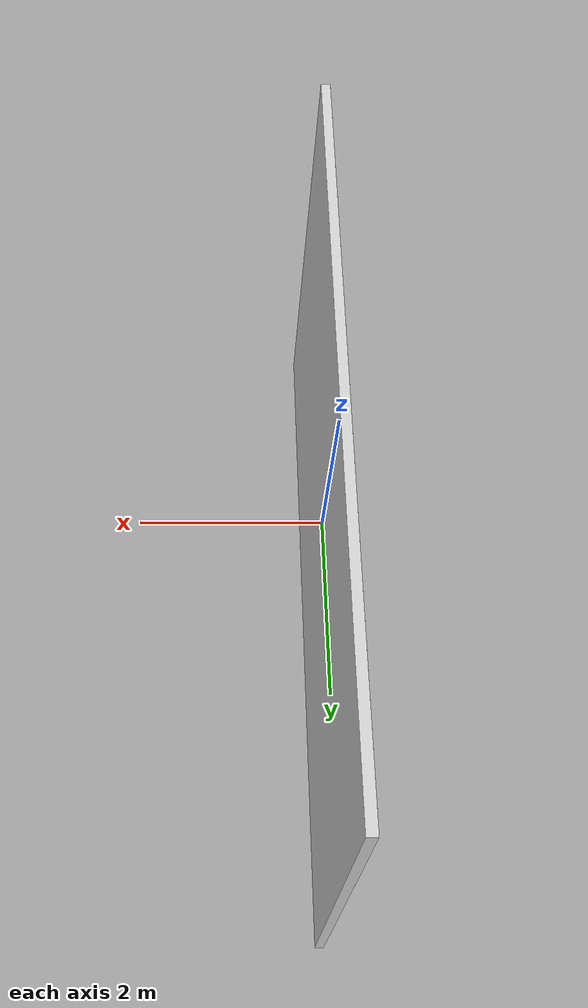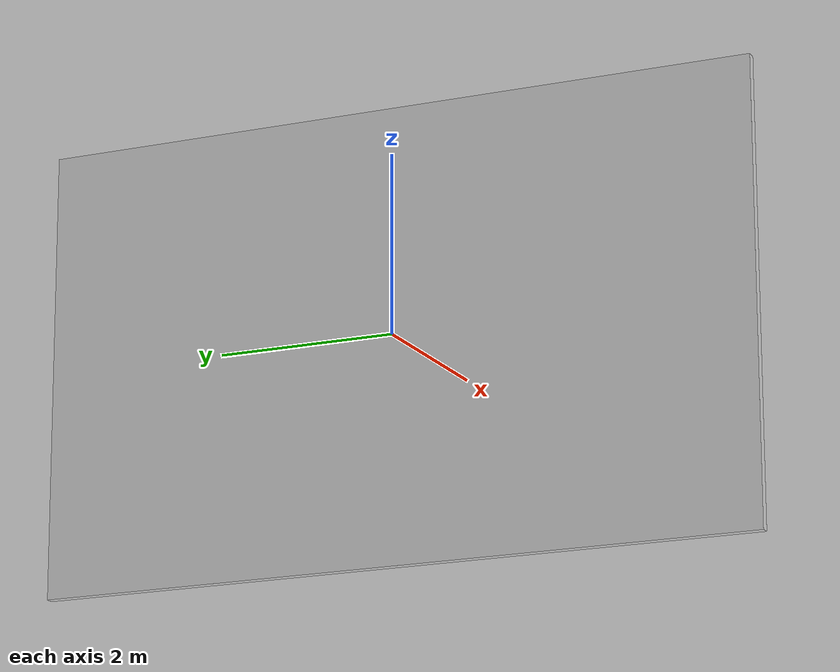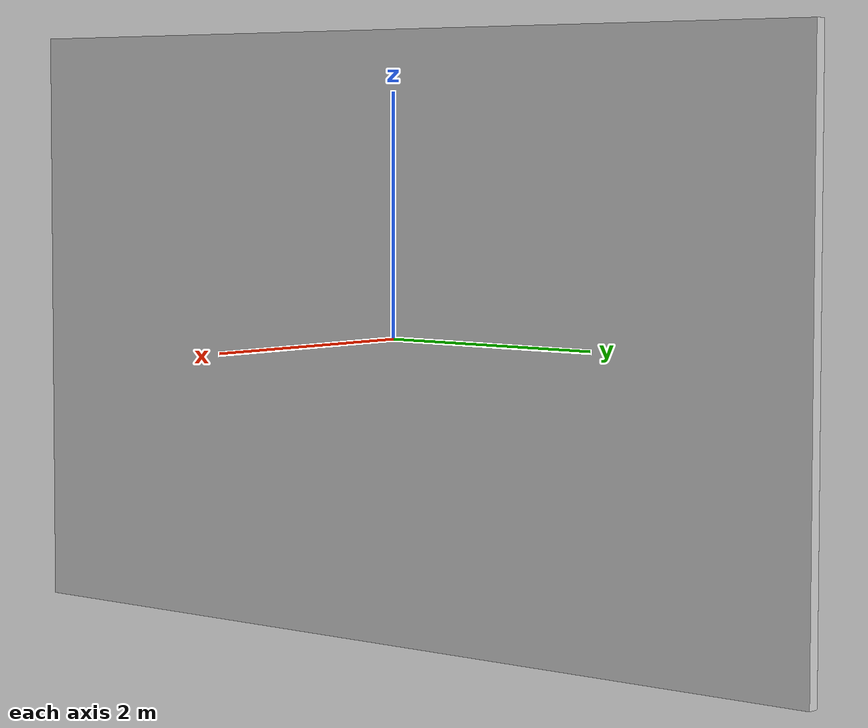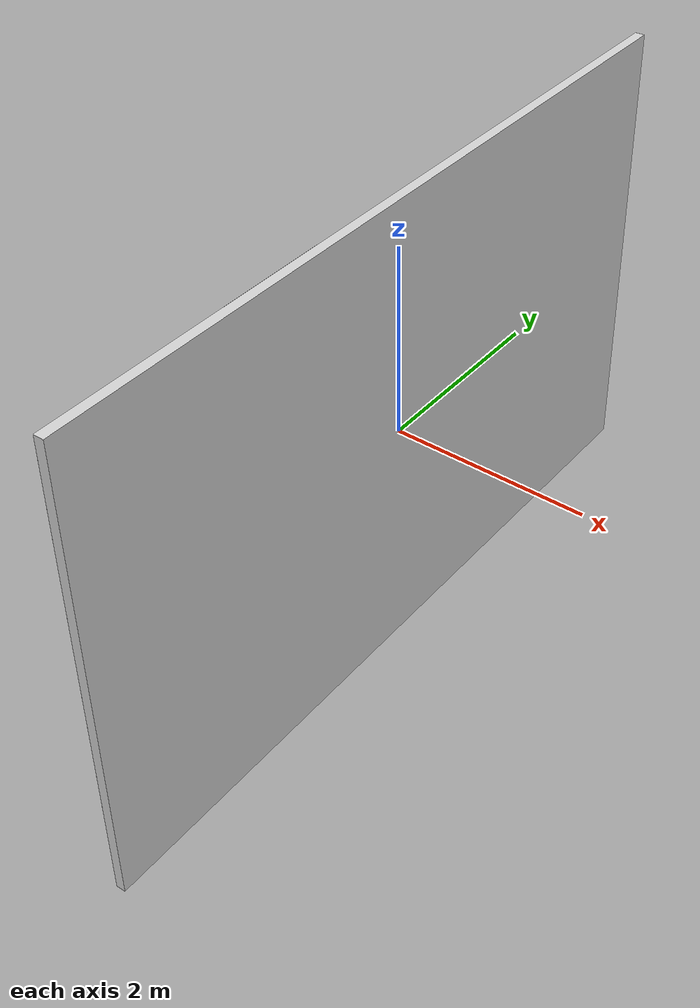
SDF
<?xml version='1.0' encoding='utf-8'?>
<sdf version='1.10'>
  <model name='wall'>
    <pose>0 0 0 0 0 0</pose>
    <link name='box_link'>
      <collision name='box_collision'>
        <geometry>
          <box>
            <size>0.1 8.1 5</size>
          </box>
        </geometry>
        <surface>
          <friction>
            <ode/>
          </friction>
          <bounce/>
          <contact/>
        </surface>
      </collision>
      <visual name='wall_visual'>
        <geometry>
          <box>
            <size>0.1 8.1 5</size>
          </box>
        </geometry>
        <material>
          <ambient>0.827 0.827 0.827 1.0</ambient>
          <diffuse>0.827 0.827 0.827 1.0</diffuse>
          <specular>0.827 0.827 0.827 1.0</specular>
          <emissive>0.2 0.2 0.2 1</emissive>
          <pbr>
              <metal>
                  <albedo_map>materials/textures/wall_4k_diff.jpg</albedo_map>
                  <emissive_map>materials/textures/wall_4k.png</emissive_map>
              </metal>
          </pbr>
        </material>
        <cast_shadows>false</cast_shadows>
      </visual>
      <visual name='image'>
        <pose>-0.0501 0 0 0 0 0</pose>
        <geometry>
          <box>
            <size>0.000001 8.1 5</size>
          </box>
        </geometry>
        <material>
          <diffuse>0.7 0.7 0.7 1</diffuse>
          <specular>1 1 1 1</specular>
          <pbr>
            <metal>
              <albedo_map>materials/textures/robocup_logo.png</albedo_map>   <!--Takeoff base image-->
              <metalness> 0 </metalness>
              <roughness>1</roughness>
            </metal>
          </pbr>
      </material>
      <cast_shadows>false</cast_shadows>
    </visual>
      <pose>0 0 0 0 0 0</pose>
      <enable_wind>false</enable_wind>
    </link>
    <static>true</static>
    <self_collide>false</self_collide>
  </model>
</sdf>
